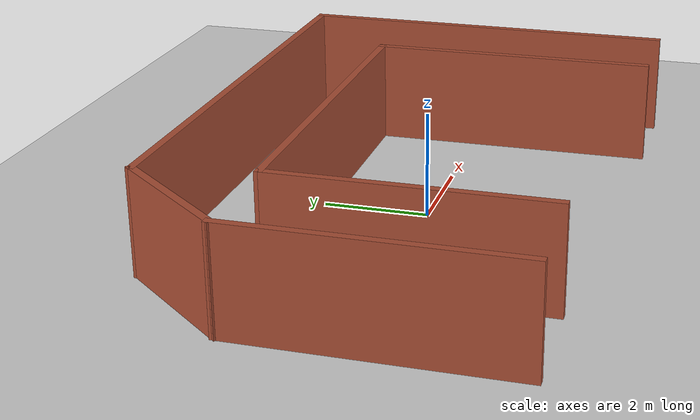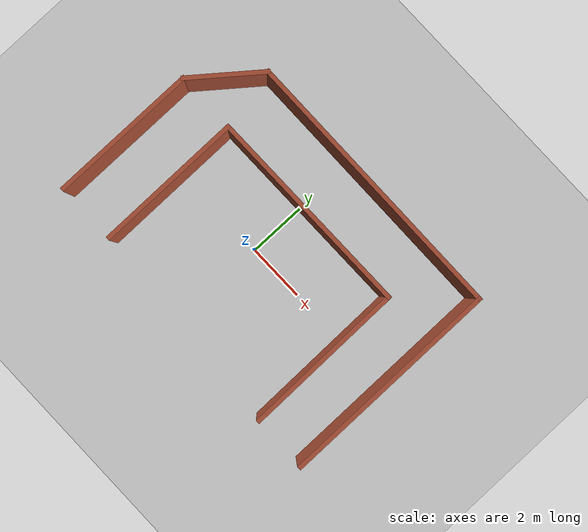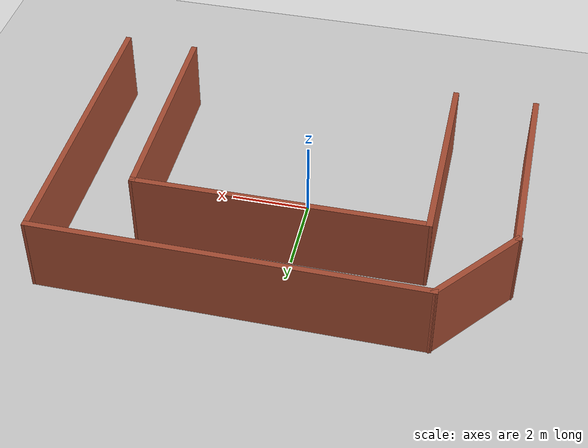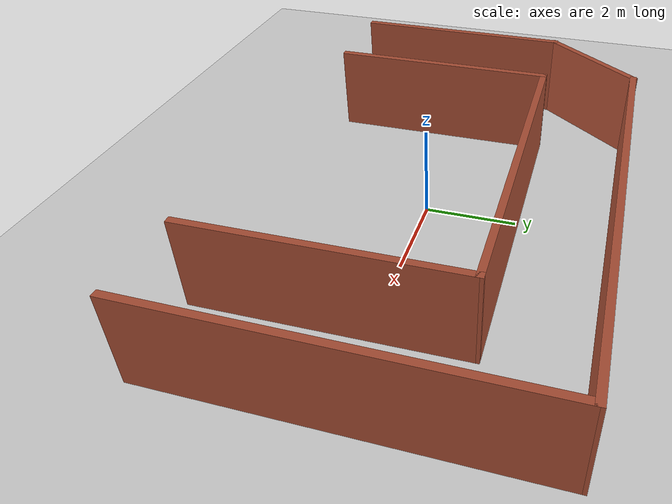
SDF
<sdf version="1.7">
 <world name="default">
  <light name="sun" type="directional">
   <pose>0 0 10 0 -0 0</pose>
   <diffuse>0.8 0.8 0.8 1</diffuse>
   <specular>0.2 0.2 0.2 1</specular>
   <attenuation>
    <range>1000</range>
    <constant>0.9</constant>
    <linear>0.01</linear>
    <quadratic>0.001</quadratic>
   </attenuation>
   <direction>-0.5 0.1 -0.9</direction>
   <spot><inner_angle>0</inner_angle><outer_angle>0</outer_angle><falloff>0</falloff></spot>
  </light>
  <model name="ground_plane">
   <static>1</static>
   <link name="link">
    <collision name="collision">
     <geometry><plane><normal>0 0 1</normal><size>100 100</size></plane></geometry>
     <surface>
      <contact><collide_bitmask>65535</collide_bitmask></contact>
      <friction><ode><mu>100</mu><mu2>50</mu2></ode></friction>
     </surface>
    </collision>
    <visual name="visual">
     <cast_shadows>0</cast_shadows>
     <geometry><plane><normal>0 0 1</normal><size>100 100</size></plane></geometry>
     <material>
      <script><uri>file://media/materials/scripts/gazebo.material</uri><name>Gazebo/Grey</name></script>
     </material>
    </visual>
   </link>
  </model>
  <gravity>0 0 -9.8</gravity>
  <magnetic_field>6e-06 2.3e-05 -4.2e-05</magnetic_field>
  <atmosphere type="adiabatic"/>
  <physics type="ode">
   <max_step_size>0.001</max_step_size>
   <real_time_factor>1</real_time_factor>
   <real_time_update_rate>1000</real_time_update_rate>
  </physics>
  <scene><ambient>0.4 0.4 0.4 1</ambient><background>0.7 0.7 0.7 1</background><shadows>1</shadows></scene>
  <spherical_coordinates>
   <surface_model>EARTH_WGS84</surface_model>
   <latitude_deg>0</latitude_deg>
   <longitude_deg>0</longitude_deg>
   <elevation>0</elevation>
   <heading_deg>0</heading_deg>
  </spherical_coordinates>
  <model name="race2">
   <pose>0.244958 0.280198 0 0 -0 0</pose>
   <link name="Wall_0">
    <collision name="Wall_0_Collision">
     <geometry><box><size>5.19016 0.15 2</size></box></geometry>
     <pose>0 0 1 0 -0 0</pose>
    </collision>
    <visual name="Wall_0_Visual">
     <pose>0 0 1 0 -0 0</pose>
     <geometry><box><size>5.19016 0.15 2</size></box></geometry>
     <material>
      <script><uri>file://media/materials/scripts/gazebo.material</uri><name>Gazebo/Bricks</name></script>
      <ambient>1 1 1 1</ambient>
     </material>
     <meta><layer>0</layer></meta>
    </visual>
    <pose>-5.61996 -0.810198 0 0 -0 1.56881</pose>
   </link>
   <link name="Wall_1">
    <collision name="Wall_1_Collision">
     <geometry><box><size>2.79715 0.15 2</size></box></geometry>
     <pose>0 0 1 0 -0 0</pose>
    </collision>
    <visual name="Wall_1_Visual">
     <pose>0 0 1 0 -0 0</pose>
     <geometry><box><size>2.79715 0.15 2</size></box></geometry>
     <material>
      <script><uri>file://media/materials/scripts/gazebo.material</uri><name>Gazebo/Bricks</name></script>
      <ambient>1 1 1 1</ambient>
     </material>
     <meta><layer>0</layer></meta>
    </visual>
    <pose>-4.78996 2.7448 0 0 -0 0.897825</pose>
   </link>
   <link name="Wall_2">
    <collision name="Wall_2_Collision">
     <geometry><box><size>9.76008 0.15 2</size></box></geometry>
     <pose>0 0 1 0 -0 0</pose>
    </collision>
    <visual name="Wall_2_Visual">
     <pose>0 0 1 0 -0 0</pose>
     <geometry><box><size>9.76008 0.15 2</size></box></geometry>
     <material>
      <script><uri>file://media/materials/scripts/gazebo.material</uri><name>Gazebo/Bricks</name></script>
      <ambient>1 1 1 1</ambient>
     </material>
     <meta><layer>0</layer></meta>
    </visual>
    <pose>0.840042 3.7598 0 0 -0 -0.004162</pose>
   </link>
   <link name="Wall_3">
    <collision name="Wall_3_Collision">
     <geometry><box><size>7.7 0.15 2</size></box></geometry>
     <pose>0 0 1 0 -0 0</pose>
    </collision>
    <visual name="Wall_3_Visual">
     <pose>0 0 1 0 -0 0</pose>
     <geometry><box><size>7.7 0.15 2</size></box></geometry>
     <material>
      <script><uri>file://media/materials/scripts/gazebo.material</uri><name>Gazebo/Bricks</name></script>
      <ambient>1 1 1 1</ambient>
     </material>
     <meta><layer>0</layer></meta>
    </visual>
    <pose>5.64504 -0.035198 0 0 -0 -1.5708</pose>
   </link>
   <link name="Wall_5">
    <collision name="Wall_5_Collision">
     <geometry><box><size>5.17001 0.15 2</size></box></geometry>
     <pose>0 0 1 0 -0 0</pose>
    </collision>
    <visual name="Wall_5_Visual">
     <pose>0 0 1 0 -0 0</pose>
     <geometry><box><size>5.17001 0.15 2</size></box></geometry>
     <material>
      <script><uri>file://media/materials/scripts/gazebo.material</uri><name>Gazebo/Bricks</name></script>
      <ambient>1 1 1 1</ambient>
     </material>
     <meta><layer>0</layer></meta>
    </visual>
    <pose>-3.54996 -0.810198 0 0 -0 1.57279</pose>
   </link>
   <link name="Wall_6">
    <collision name="Wall_6_Collision">
     <geometry><box><size>7.40006 0.15 2</size></box></geometry>
     <pose>0 0 1 0 -0 0</pose>
    </collision>
    <visual name="Wall_6_Visual">
     <pose>0 0 1 0 -0 0</pose>
     <geometry><box><size>7.40006 0.15 2</size></box></geometry>
     <material>
      <script><uri>file://media/materials/scripts/gazebo.material</uri><name>Gazebo/Bricks</name></script>
      <ambient>1 1 1 1</ambient>
     </material>
     <meta><layer>0</layer></meta>
    </visual>
    <pose>0.070042 1.7148 0 0 -0 0.004138</pose>
   </link>
   <link name="Wall_7">
    <collision name="Wall_7_Collision">
     <geometry><box><size>5.65023 0.15 2</size></box></geometry>
     <pose>0 0 1 0 -0 0</pose>
    </collision>
    <visual name="Wall_7_Visual">
     <pose>0 0 1 0 -0 0</pose>
     <geometry><box><size>5.65023 0.15 2</size></box></geometry>
     <material>
      <script><uri>file://media/materials/scripts/gazebo.material</uri><name>Gazebo/Bricks</name></script>
      <ambient>1 1 1 1</ambient>
     </material>
     <meta><layer>0</layer></meta>
    </visual>
    <pose>3.72004 -1.0202 0 0 -0 -1.56171</pose>
   </link>
   <static>1</static>
  </model>
 </world>
</sdf>
